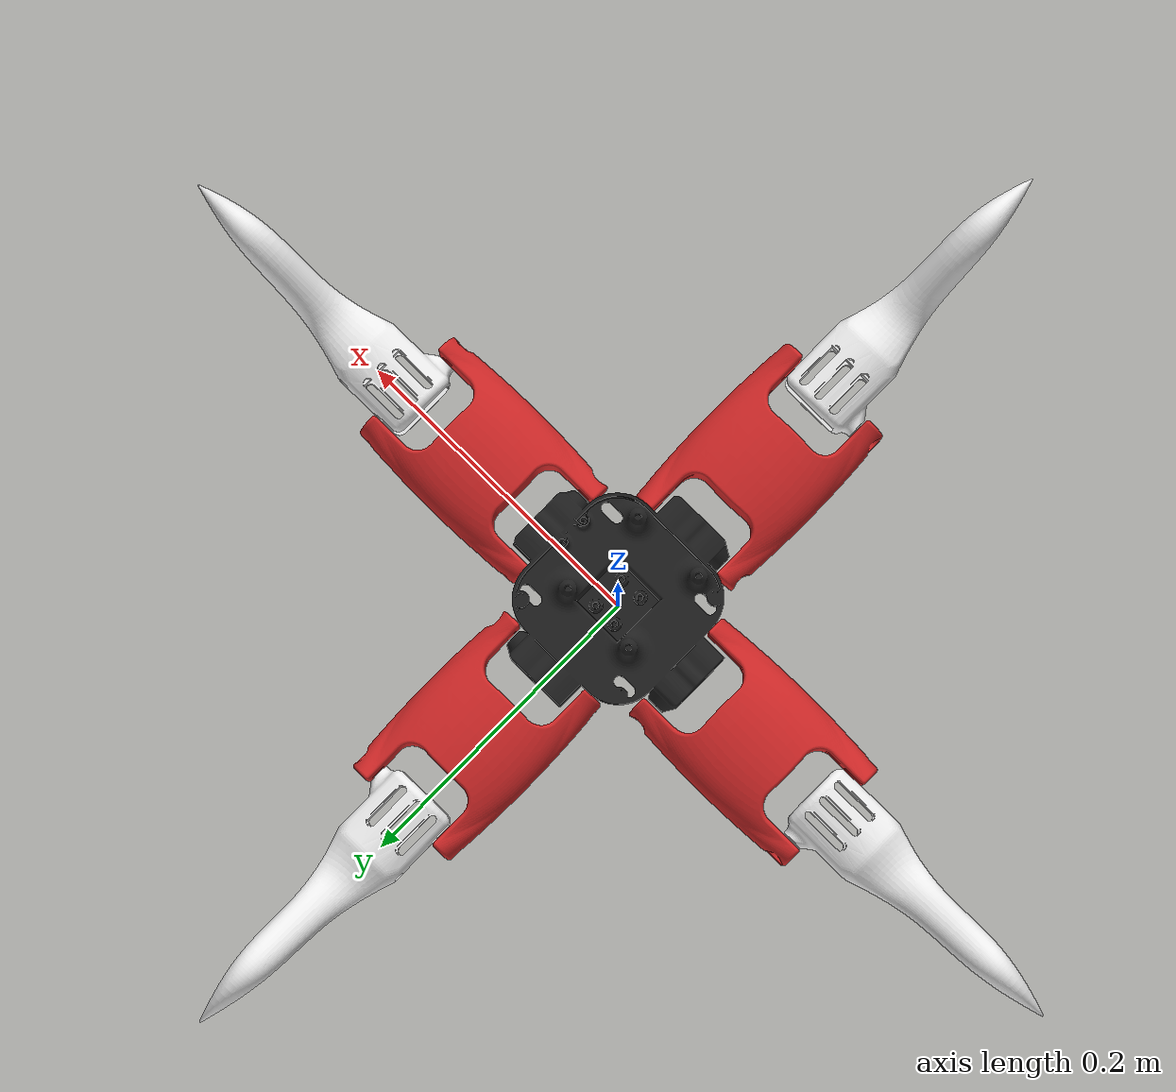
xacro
<?xml version="1.0"?>
<robot name="spyndra" xmlns:xacro="http://www.ros.org/wiki/xacro">
  <!-- constants -->
  <xacro:property name="pi" value="3.1415926535897931"/>

  <!-- link offset for each STL file -->
  <xacro:property name="off_cx" value="-0.11" />
  <xacro:property name="off_cy" value="-0.068" />
  <xacro:property name="off_cz" value="0" />
  <xacro:property name="off_fx" value="-0.00825" />
  <xacro:property name="off_fy" value="0.0455" />
  <xacro:property name="off_fz" value="-0.022" />
  <xacro:property name="off_tx" value="0.1735" />
  <xacro:property name="off_ty" value="0.0215" />
  <xacro:property name="off_tz" value="-0.02" />

  <!-- joint position -->
  <xacro:property name="jt_cx" value="0.0585" />
  <xacro:property name="jt_cy" value="-0.003" />
  <xacro:property name="jt_cz" value="0.047" />
  <xacro:property name="jt_fx" value="0.111" />
  <xacro:property name="jt_fy" value="0.003" />
  <xacro:property name="jt_fz" value="0" />

  <!-- component mass -->
  <xacro:property name="mc" value="0.23069271"/>
  <xacro:property name="mf" value="0.20096365"/>
  <xacro:property name="mt" value="0.10764861"/>

  <!-- TODO: center of mass -->
  <xacro:property name="chassis_origin_z" value="0.09441"/>
  <xacro:property name="femur_origin_x" value="0.0635"/>
  <xacro:property name="tibia_origin_x" value="0.09429"/>
  <xacro:property name="femur_origin_z" value="0.09441"/>

  <!-- moment of inertia -->
  <xacro:property name="chassis_ixx" value="0.0029636" />
  <xacro:property name="chassis_ixy" value="0.00000019" />
  <xacro:property name="chassis_iyy" value="0.00028197" />
  <xacro:property name="chassis_iyz" value="-0.00000269" />
  <xacro:property name="chassis_izz" value="0.00044786" />
  <xacro:property name="chassis_ixz" value="-0.00000106" />

  <xacro:property name="femur_ixx" value="0.00025261" />
  <xacro:property name="femur_ixy" value="0.0" />
  <xacro:property name="femur_iyy" value="0.00014944" />
  <xacro:property name="femur_iyz" value="-0.00000002" />
  <xacro:property name="femur_izz" value="0.00013756" />
  <xacro:property name="femur_ixz" value="-0.00000601" />

  <xacro:property name="tibia_ixx" value="0.00021435" />
  <xacro:property name="tibia_ixy" value="-0.00000128" />
  <xacro:property name="tibia_iyy" value="0.00019560" />
  <xacro:property name="tibia_iyz" value="-0.00005856" />
  <xacro:property name="tibia_izz" value="0.00004159" />
  <xacro:property name="tibia_ixz" value="0.00000606" />

  <!-- Import all Gazebo-customization elements -->
  <xacro:include filename="$(find spyndra_description)/urdf/spyndra.gazebo" />
  <xacro:include filename="$(find spyndra_description)/urdf/materials.xacro" />

  <!-- links -->
  <link name="base_link">
    <collision>
      <geometry>
        <mesh filename="package://spyndra_description/meshes/chassis.stl"     scale="0.001 0.001 0.001"/>
      </geometry>
      <origin xyz="${off_cx} ${off_cy} ${off_cz}" rpy="0 0 0"/>
    </collision>
    <visual>
      <geometry>
        <mesh filename="package://spyndra_description/meshes/chassis.stl"     scale="0.001 0.001 0.001"/>
      </geometry>
      <origin xyz="${off_cx} ${off_cy} ${off_cz}" rpy="0 0 0"/>
      <material name="black"/>
    </visual>
    <inertial>
      <origin xyz="0 0 ${chassis_origin_z}"  rpy="0 0 0"/>
      <mass value="${mc}"/>
      <inertia ixx="${chassis_ixx}" ixy="${chassis_ixy}"
        iyy="${chassis_iyy}" iyz = "${chassis_iyz}"
        izz="${chassis_izz}" ixz="${chassis_ixz}" />
    </inertial>
  </link>

  <link name="femur_1">
    <collision>
      <geometry>
        <mesh filename="package://spyndra_description/meshes/femur.stl" scale="0.001 0.001 0.001"/>
      </geometry>
      <material name="red"/>
      <origin xyz="${off_fx} ${off_fy} ${off_fz}" rpy="${pi} ${-pi/2} 0"/>
    </collision>
    <visual>
      <geometry>
        <mesh filename="package://spyndra_description/meshes/femur.stl" scale="0.001 0.001 0.001"/>
      </geometry>
      <material name="red"/>
      <origin xyz="${off_fx} ${off_fy} ${off_fz}" rpy="${pi} ${-pi/2} 0"/>
    </visual>
    <inertial>
      <origin xyz="${femur_origin_x} 0 ${femur_origin_z}" rpy="0 0 0"/>
      <mass value="${mf}"/>
      <inertia ixx="${femur_ixx}" ixy="${femur_ixy}"
        iyy="${femur_iyy}" iyz = "${femur_iyz}"
        izz="${femur_izz}" ixz="${femur_ixz}" />
    </inertial>
  </link>

  <link name="tibia_1">
    <collision>
      <geometry>
        <mesh filename="package://spyndra_description/meshes/tibia.stl" scale="0.001 0.001 0.001"/>
      </geometry>
      <material name="white"/>
      <origin xyz="${off_tx} ${off_ty} ${off_tz}" rpy="${pi/2} 0 ${-pi/2}"/>
    </collision>
    <visual>
      <geometry>
        <mesh filename="package://spyndra_description/meshes/tibia.stl" scale="0.001 0.001 0.001"/>
      </geometry>
      <material name="white"/>
      <origin xyz="${off_tx} ${off_ty} ${off_tz}" rpy="${pi/2} 0 ${-pi/2}"/>
    </visual>
    <inertial>
      <origin xyz="${tibia_origin_x} 0 0" rpy="0 0 0"/>
      <mass value="${mt}"/>
      <inertia ixx="${tibia_ixx}" ixy="${tibia_ixy}"
        iyy="${tibia_iyy}" iyz = "${tibia_iyz}"
        izz="${tibia_izz}" ixz="${tibia_ixz}" />
    </inertial>
  </link>

  <link name="femur_2">
    <collision>
      <geometry>
        <mesh filename="package://spyndra_description/meshes/femur.stl" scale="0.001 0.001 0.001"/>
      </geometry>
      <material name="red"/>
      <origin xyz="${off_fx} ${off_fy} ${off_fz}" rpy="${pi} ${-pi/2} 0"/>
    </collision>
    <visual>
      <geometry>
        <mesh filename="package://spyndra_description/meshes/femur.stl" scale="0.001 0.001 0.001"/>
      </geometry>
      <material name="red"/>
      <origin xyz="${off_fx} ${off_fy} ${off_fz}" rpy="${pi} ${-pi/2} 0"/>
    </visual>
    <inertial>
      <origin xyz="${femur_origin_x} 0 ${femur_origin_z}"  rpy="0 0 0"/>
      <mass value="${mc}"/>
      <inertia ixx="${femur_ixx}" ixy="${femur_ixy}"
        iyy="${femur_iyy}" iyz = "${femur_iyz}"
        izz="${femur_izz}" ixz="${femur_ixz}" />
    </inertial>
  </link>

  <link name="tibia_2">
    <collision>
      <geometry>
        <mesh filename="package://spyndra_description/meshes/tibia.stl" scale="0.001 0.001 0.001"/>
      </geometry>
      <material name="white"/>
      <origin xyz="${off_tx} ${off_ty} ${off_tz}" rpy="${pi/2} 0 ${-pi/2}"/>
    </collision>
    <visual>
      <geometry>
        <mesh filename="package://spyndra_description/meshes/tibia.stl" scale="0.001 0.001 0.001"/>
      </geometry>
      <material name="white"/>
      <origin xyz="${off_tx} ${off_ty} ${off_tz}" rpy="${pi/2} 0 ${-pi/2}"/>
    </visual>
    <inertial>
      <origin xyz="${tibia_origin_x} 0 0" rpy="0 0 0"/>
      <mass value="${mt}"/>
      <inertia ixx="${tibia_ixx}" ixy="${tibia_ixy}"
        iyy="${tibia_iyy}" iyz = "${tibia_iyz}"
        izz="${tibia_izz}" ixz="${tibia_ixz}" />
    </inertial>
  </link>

  <link name="femur_3">
    <collision>
      <geometry>
        <mesh filename="package://spyndra_description/meshes/femur.stl" scale="0.001 0.001 0.001"/>
      </geometry>
      <material name="red"/>
      <origin xyz="${off_fx} ${off_fy} ${off_fz}" rpy="${pi} ${-pi/2} 0"/>
    </collision>
    <visual>
      <geometry>
        <mesh filename="package://spyndra_description/meshes/femur.stl" scale="0.001 0.001 0.001"/>
      </geometry>
      <material name="red"/>
      <origin xyz="${off_fx} ${off_fy} ${off_fz}" rpy="${pi} ${-pi/2} 0"/>
    </visual>
    <inertial>
      <origin xyz="${femur_origin_x} 0 ${femur_origin_z}"  rpy="0 0 0"/>
      <mass value="${mc}"/>
      <inertia ixx="${femur_ixx}" ixy="${femur_ixy}"
        iyy="${femur_iyy}" iyz = "${femur_iyz}"
        izz="${femur_izz}" ixz="${femur_ixz}" />
    </inertial>
  </link>

  <link name="tibia_3">
    <collision>
      <geometry>
        <mesh filename="package://spyndra_description/meshes/tibia.stl" scale="0.001 0.001 0.001"/>
      </geometry>
      <material name="white"/>
      <origin xyz="${off_tx} ${off_ty} ${off_tz}" rpy="${pi/2} 0 ${-pi/2}"/>
    </collision>
    <visual>
      <geometry>
        <mesh filename="package://spyndra_description/meshes/tibia.stl" scale="0.001 0.001 0.001"/>
      </geometry>
      <material name="white"/>
      <origin xyz="${off_tx} ${off_ty} ${off_tz}" rpy="${pi/2} 0 ${-pi/2}"/>
    </visual>
    <inertial>
      <origin xyz="${tibia_origin_x} 0 0" rpy="0 0 0"/>
      <mass value="${mt}"/>
      <inertia ixx="${tibia_ixx}" ixy="${tibia_ixy}"
        iyy="${tibia_iyy}" iyz = "${tibia_iyz}"
        izz="${tibia_izz}" ixz="${tibia_ixz}" />
    </inertial>
  </link>

  <link name="femur_4">
    <collision>
      <geometry>
        <mesh filename="package://spyndra_description/meshes/femur.stl" scale="0.001 0.001 0.001"/>
      </geometry>
      <material name="red"/>
      <origin xyz="${off_fx} ${off_fy} ${off_fz}" rpy="${pi} ${-pi/2} 0"/>
    </collision>
    <visual>
      <geometry>
        <mesh filename="package://spyndra_description/meshes/femur.stl" scale="0.001 0.001 0.001"/>
      </geometry>
      <material name="red"/>
      <origin xyz="${off_fx} ${off_fy} ${off_fz}" rpy="${pi} ${-pi/2} 0"/>
    </visual>
    <inertial>
      <origin xyz="${femur_origin_x} 0 ${femur_origin_z}"  rpy="0 0 0"/>
      <mass value="${mc}"/>
      <inertia ixx="${femur_ixx}" ixy="${femur_ixy}"
        iyy="${femur_iyy}" iyz = "${femur_iyz}"
        izz="${femur_izz}" ixz="${femur_ixz}" />
    </inertial>
  </link>

  <link name="tibia_4">
    <collision>
      <geometry>
        <mesh filename="package://spyndra_description/meshes/tibia.stl" scale="0.001 0.001 0.001"/>
      </geometry>
      <material name="white"/>
      <origin xyz="${off_tx} ${off_ty} ${off_tz}" rpy="${pi/2} 0 ${-pi/2}"/>
    </collision>
    <visual>
      <geometry>
        <mesh filename="package://spyndra_description/meshes/tibia.stl" scale="0.001 0.001 0.001"/>
      </geometry>
      <material name="white"/>
      <origin xyz="${off_tx} ${off_ty} ${off_tz}" rpy="${pi/2} 0 ${-pi/2}"/>
    </visual>
    <inertial>
      <origin xyz="${tibia_origin_x} 0 0" rpy="0 0 0"/>
      <mass value="${mt}"/>
      <inertia ixx="${tibia_ixx}" ixy="${tibia_ixy}"
        iyy="${tibia_iyy}" iyz = "${tibia_iyz}"
        izz="${tibia_izz}" ixz="${tibia_ixz}" />
    </inertial>
  </link>

  <joint name="motor_f1" type="revolute">
    <parent link="base_link"/>
    <child link="femur_1"/>
    <axis xyz="0 1 0"/>
    <origin rpy="0 0 0" xyz="${jt_cx} ${jt_cy} ${jt_cz}"/>
    <limit effort="1000.0" lower="-0.5" upper="0.8" velocity="0.5"/>
  </joint>

  <joint name="motor_t1" type="revolute">
    <parent link="femur_1"/>
    <child link="tibia_1"/>
    <axis xyz="0 1 0"/>
    <origin rpy="0 0 0" xyz="${jt_fx} ${jt_fy} ${jt_fz}"/>
    <limit effort="1000.0" lower="-0.5" upper="0.8" velocity="0.5"/>
  </joint>

  <joint name="motor_f2" type="revolute">
    <parent link="base_link"/>
    <child link="femur_2"/>
    <axis xyz="0 1 0"/>
    <origin rpy="0 0 ${-pi/2}" xyz="${jt_cy} ${-jt_cx} ${jt_cz}"/>
    <limit effort="1000.0" lower="-0.5" upper="0.8" velocity="0.5"/>
  </joint>

  <joint name="motor_t2" type="revolute">
    <parent link="femur_2"/>
    <child link="tibia_2"/>
    <axis xyz="0 1 0"/>
    <origin rpy="0 0 0" xyz="${jt_fx} ${jt_fy} ${jt_fz}"/>
    <limit effort="1000.0" lower="-0.5" upper="0.8" velocity="0.5"/>
  </joint>

  <joint name="motor_f3" type="revolute">
    <parent link="base_link"/>
    <child link="femur_3"/>
    <axis xyz="0 1 0"/>
    <origin rpy="0 0 ${-pi}" xyz="${-jt_cx} ${-jt_cy} ${jt_cz}"/>
    <limit effort="1000.0" lower="-0.5" upper="0.8" velocity="0.5"/>
  </joint>

  <joint name="motor_t3" type="revolute">
    <parent link="femur_3"/>
    <child link="tibia_3"/>
    <axis xyz="0 1 0"/>
    <origin rpy="0 0 0" xyz="${jt_fx} ${jt_fy} ${jt_fz}"/>
    <limit effort="1000.0" lower="-0.5" upper="0.8" velocity="0.5"/>
  </joint>

  <joint name="motor_f4" type="revolute">
    <parent link="base_link"/>
    <child link="femur_4"/>
    <axis xyz="0 1 0"/>
    <origin rpy="0 0 ${pi/2}" xyz="${-jt_cy} ${jt_cx} ${jt_cz}"/>
    <limit effort="1000.0" lower="-0.5" upper="0.8" velocity="0.5"/>
  </joint>

  <joint name="motor_t4" type="revolute">
    <parent link="femur_4"/>
    <child link="tibia_4"/>
    <axis xyz="0 1 0"/>
    <origin rpy="0 0 0" xyz="${jt_fx} ${jt_fy} ${jt_fz}"/>
    <limit effort="1000.0" lower="-0.5" upper="0.8" velocity="0.5"/>
  </joint>

  <!-- Actuators -->
  <transmission name="tran_f1">
    <type>transmission_interface/SimpleTransmission</type>
    <joint name="motor_f1">
      <hardwareInterface>EffortJointInterface</hardwareInterface>
    </joint>
    <actuator name="servo_f1">
      <hardwareInterface>EffortJointInterface</hardwareInterface>
      <mechanicalReduction>1</mechanicalReduction>
    </actuator>
  </transmission>

  <transmission name="tran_t1">
    <type>transmission_interface/SimpleTransmission</type>
    <joint name="motor_t1">
      <hardwareInterface>EffortJointInterface</hardwareInterface>
    </joint>
    <actuator name="servo_t1">
      <hardwareInterface>EffortJointInterface</hardwareInterface>
      <mechanicalReduction>1</mechanicalReduction>
    </actuator>
  </transmission>

  <transmission name="tran_f2">
    <type>transmission_interface/SimpleTransmission</type>
    <joint name="motor_f2">
      <hardwareInterface>EffortJointInterface</hardwareInterface>
    </joint>
    <actuator name="servo_f2">
      <hardwareInterface>EffortJointInterface</hardwareInterface>
      <mechanicalReduction>1</mechanicalReduction>
    </actuator>
  </transmission>

  <transmission name="tran_t2">
    <type>transmission_interface/SimpleTransmission</type>
    <joint name="motor_t2">
      <hardwareInterface>EffortJointInterface</hardwareInterface>
    </joint>
    <actuator name="servo_t2">
      <hardwareInterface>EffortJointInterface</hardwareInterface>
      <mechanicalReduction>1</mechanicalReduction>
    </actuator>
  </transmission>

  <transmission name="tran_f3">
    <type>transmission_interface/SimpleTransmission</type>
    <joint name="motor_f3">
      <hardwareInterface>EffortJointInterface</hardwareInterface>
    </joint>
    <actuator name="servo_f3">
      <hardwareInterface>EffortJointInterface</hardwareInterface>
      <mechanicalReduction>1</mechanicalReduction>
    </actuator>
  </transmission>

  <transmission name="tran_t3">
    <type>transmission_interface/SimpleTransmission</type>
    <joint name="motor_t3">
      <hardwareInterface>EffortJointInterface</hardwareInterface>
    </joint>
    <actuator name="servo_t3">
      <hardwareInterface>EffortJointInterface</hardwareInterface>
      <mechanicalReduction>1</mechanicalReduction>
    </actuator>
  </transmission>

  <transmission name="tran_f4">
    <type>transmission_interface/SimpleTransmission</type>
    <joint name="motor_f4">
      <hardwareInterface>EffortJointInterface</hardwareInterface>
    </joint>
    <actuator name="servo_f4">
      <hardwareInterface>EffortJointInterface</hardwareInterface>
      <mechanicalReduction>1</mechanicalReduction>
    </actuator>
  </transmission>

  <transmission name="tran_t4">
    <type>transmission_interface/SimpleTransmission</type>
    <joint name="motor_t4">
      <hardwareInterface>EffortJointInterface</hardwareInterface>
    </joint>
    <actuator name="servo_t4">
      <hardwareInterface>EffortJointInterface</hardwareInterface>
      <mechanicalReduction>1</mechanicalReduction>
    </actuator>
  </transmission>

</robot>
